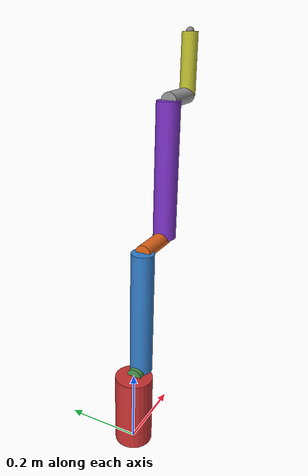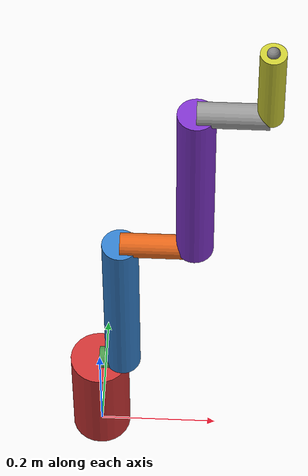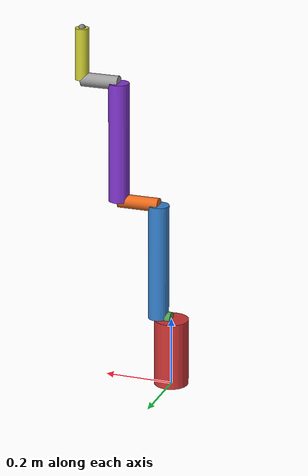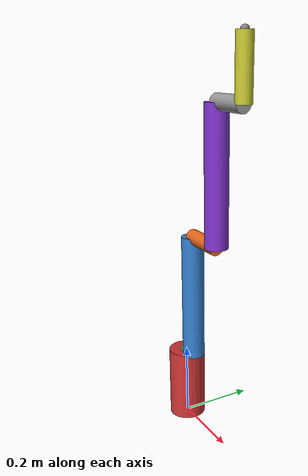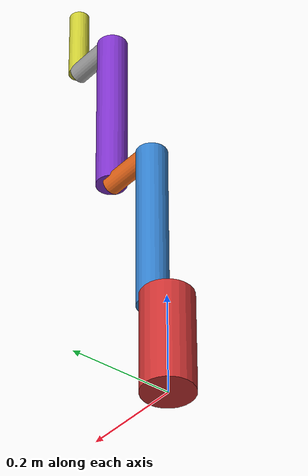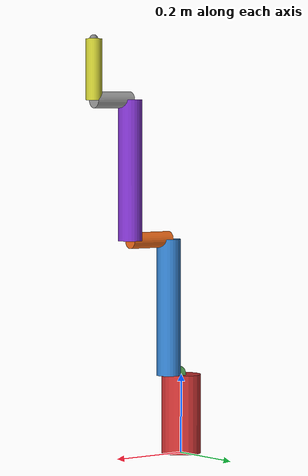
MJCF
<mujoco model="brazo_primitivas">

  <compiler angle="radian" autolimits="true"/>

  <default>
    <joint type="hinge" damping="1.0" armature="0.01"/>
    <position kp="20" forcerange="-100 100"/> <geom density="1000"/> </default>

  <default>
    <default class="rot_z"> <joint axis="0 0 1" range="-3.14 3.14"/>
    </default>
    <default class="rot_y"> <joint axis="0 1 0" range="-1.57 1.57"/>
    </default>
  </default>

  <asset>
    <material name="mat_base" rgba="0.8 0.2 0.2 1"/>  <material name="mat_link1" rgba="0.3 0.6 0.3 1"/> <material name="mat_hombro" rgba="0.2 0.5 0.8 1"/> <material name="mat_link2" rgba="0.9 0.4 0.1 1"/> <material name="mat_antebrazo" rgba="0.5 0.2 0.8 1"/> <material name="mat_link3" rgba="0.6 0.6 0.6 1"/> <material name="mat_gripper" rgba="0.8 0.8 0.2 1"/> </asset>

  <worldbody>
    <light name="spotlight" mode="targetbodycom" target="base" pos="0 -2 3"/>

    <body name="base" pos="0 0 0.1"> <joint class="rot_z" name="q0_base"/>
      <geom type="cylinder" size="0.05 0.1" material="mat_base"/> <body name="link1" pos="0 0 0.1">
        <joint class="rot_y" name="q1_link1"/> <geom type="cylinder" size="0.02 0.02" pos="0.02 0 0" material="mat_link1" axisangle="0 1 0 1.5708"/>

        <body name="hombro" pos="0.04 0 0">
          <geom type="cylinder" size="0.03 0.172" pos="0 0 0.172" material="mat_hombro"/>

          <body name="link2" pos="0 0 0.344">
            <joint class="rot_y" name="q2_link2"/><geom type="cylinder" size="0.02 0.06025" pos="0.06025 0 0" material="mat_link2" axisangle="0 1 0 1.5708"/>

            <body name="antebrazo" pos="0.1205 0 0">
              <joint class="rot_z" name="q3_antebrazo"/> <geom type="cylinder" size="0.03 0.175" pos="0 0 0.175" material="mat_antebrazo"/>

              <body name="link3" pos="0 0 0.35">
                <joint class="rot_y" name="q4_link3"/> <geom type="cylinder" size="0.02 0.055" pos="0.055 0 0" material="mat_link3" axisangle="0 1 0 1.5708"/>

                <body name="gripper" pos="0.11 0 0">
                  <joint class="rot_z" name="q5_gripper"/> <geom type="cylinder" size="0.02 0.075" pos="0 0 0.075" material="mat_gripper"/>

                  <site name="eef" pos="0 0 0.15" size="0.01"/>
                </body>
              </body>
            </body>
          </body>
        </body>
      </body>
    </body>
  </worldbody>

  <contact>
    <exclude body1="base" body2="link1"/>
    <exclude body1="link1" body2="hombro"/>
    <exclude body1="hombro" body2="link2"/>
    <exclude body1="link2" body2="antebrazo"/>
    <exclude body1="antebrazo" body2="link3"/>
    <exclude body1="link3" body2="gripper"/>
  </contact>

  <actuator>
    <position class="rot_z" name="act_q0_base" joint="q0_base"/>
    <position class="rot_y" name="act_q1_link1" joint="q1_link1"/>
    <position class="rot_y" name="act_q2_link2" joint="q2_link2"/>
    <position class="rot_z" name="act_q3_antebrazo" joint="q3_antebrazo"/>
    <position class="rot_y" name="act_q4_link3" joint="q4_link3"/>
    <position class="rot_z" name="act_q5_gripper" joint="q5_gripper"/>
  </actuator>

  <keyframe>
    <key name="home" qpos="0 0 0 0 0 0" ctrl="0 0 0 0 0 0"/>
  </keyframe>

</mujoco>
